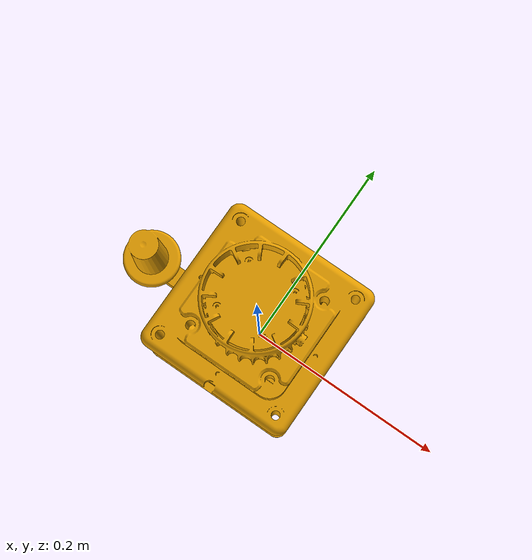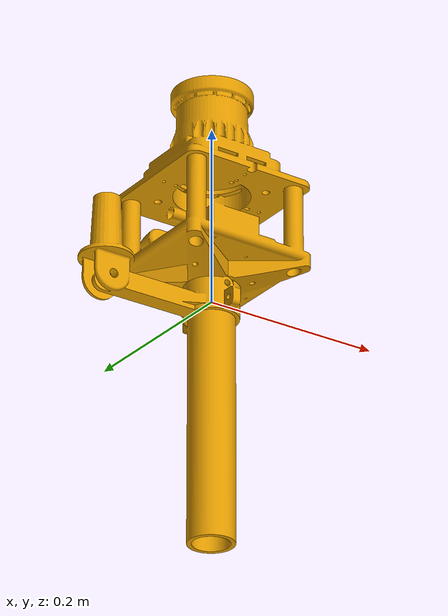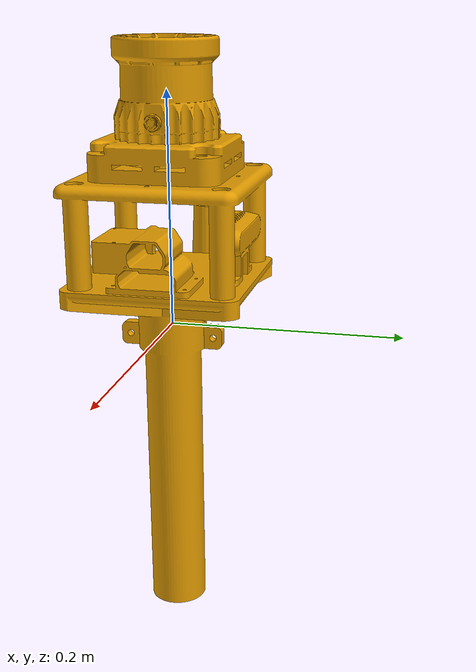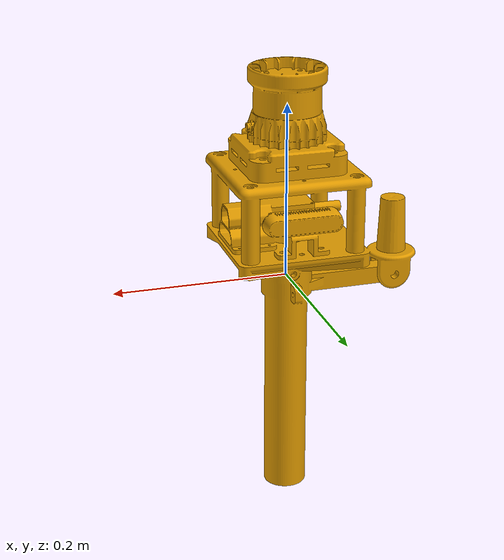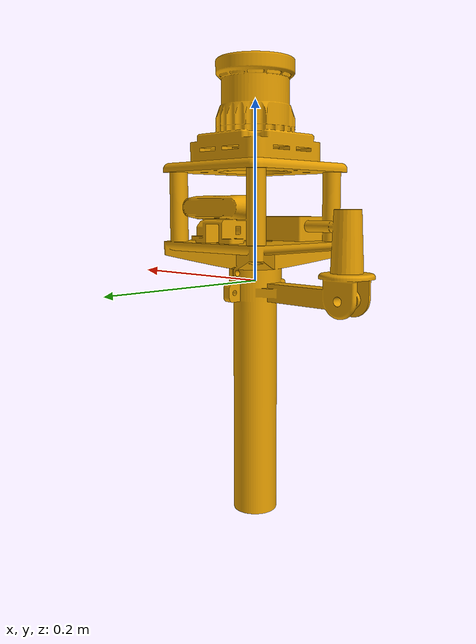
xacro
<?xml version="1.0"?>
<robot xmlns:xacro="http://www.ros.org/wiki/xacro" name="robot">
<xacro:property name="mesh_dir" value="/home/tobias/Development/fruc_dataset_apparatus/docker/docker_shared/apparatus_description/meshes"/>
<!-- Mesh path prefix -->
<xacro:property name="mesh_prefix" value="package://apparatus_description/meshes" />

<!-- BASE LINK -->
<link name="base_link">
<visual>
<origin xyz="0 0 0" rpy="0 0 0" />
<geometry>
<mesh filename="${mesh_prefix}/apperatus.obj" />
</geometry>
</visual>
</link>
<!-- OUSTER LINKS -->
<link name="os_sensor" />
<link name="os_lidar" />
<link name="os_imu" />
<!-- XSENS LINKS -->
<link name="xsens_imu" />
<!-- GPS LINKS -->
<link name="gps_link" />
<!-- REALSENSE LINKS -->
<link name="camera_link" />
<link name="camera_depth_frame" />
<link name="camera_depth_optical_frame" />
<link name="camera_color_frame" />
<link name="camera_color_optical_frame" />
<!-- OUSTER JOINTS -->
<joint name="base_link_to_os_sensor" type="fixed">
<parent link="base_link" />
<child link="os_sensor" />
<origin xyz="0 0 0.206440" rpy="0 0 ${pi}" />
</joint>
<joint name="os_sensor_to_os_lidar" type="fixed">
<parent link="os_sensor" />
<child link="os_lidar" />
<origin xyz="0 0 0" rpy="0 0 0" />
</joint>

<!-- UPDATED: Calibrated IMU position based on Kalibr camera-IMU calibration -->
<joint name="os_sensor_to_os_imu" type="fixed">
<parent link="os_sensor" />
<child link="os_imu" />
<origin xyz="-0.03516933627986119 0.026844313894637633 0.0514881960085294"
        rpy="0.0527437133816158 -0.06297509863959863 1.5228784764076906" />
</joint>
<!-- XSENS JOINTS -->
<joint name="base_link_to_xsens_imu" type="fixed">
<parent link="base_link" />
<child link="xsens_imu" />
<origin xyz="-0.015121 -0.046950 0.0586" rpy="0 0 0" />
</joint>
<!-- GPS JOINTS -->
<joint name="base_link_to_gps_link" type="fixed">
<parent link="base_link" />
<child link="gps_link" />
<origin xyz="0 -0.128 0.012" rpy="0 0 0" />
</joint>
<!-- CALIBRATED CAMERA JOINT (Position unchanged from lidar-camera calibration) -->
<joint name="joint_os_sensor_to_camera_link" type="fixed">
  <parent link="os_sensor" />
  <child link="camera_link" />
  <origin
    xyz="0.01424664 -0.07454732 -0.12227248"
    rpy="0.0013625367954899733 0.003069697768602153 ${pi + 1.558103710329454}" />
</joint>
<!-- REALSENSE JOINTS -->
<!-- camera_link → camera_depth_frame (identity) -->
<joint name="camera_link_to_camera_depth_frame" type="fixed">
  <parent link="camera_link"/>
  <child link="camera_depth_frame"/>
  <origin xyz="0 0 0" rpy="0 0 0"/>
</joint>

<!-- camera_depth_frame → camera_depth_optical_frame -->
<joint name="camera_depth_frame_to_camera_depth_optical_frame" type="fixed">
  <parent link="camera_depth_frame"/>
  <child link="camera_depth_optical_frame"/>
  <origin xyz="0 0 0" rpy="${-pi/2} 0 ${-pi/2}"/>
</joint>

<!-- camera_link → camera_color_frame (CALIBRATED) -->
<joint name="camera_link_to_camera_color_frame" type="fixed">
  <parent link="camera_link"/>
  <child link="camera_color_frame"/>
  <origin
    xyz="-0.000466 0.014719 0.000251"
    rpy="0.012458 0.003109 0.003694"/>
</joint>

<!-- camera_color_frame → camera_color_optical_frame -->
<joint name="camera_color_frame_to_camera_color_optical_frame" type="fixed">
  <parent link="camera_color_frame"/>
  <child link="camera_color_optical_frame"/>
  <origin xyz="0 0 0" rpy="${-pi/2} 0 ${-pi/2}"/>
</joint>
</robot>
